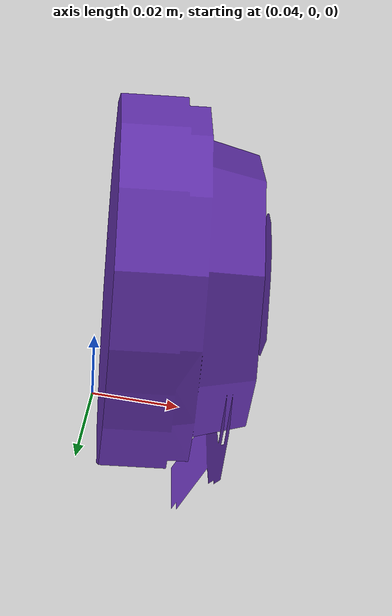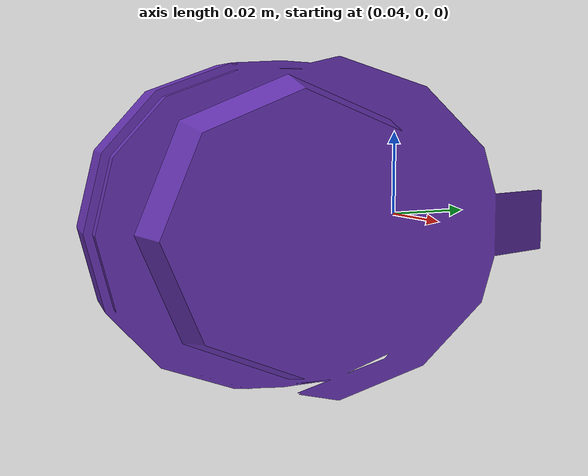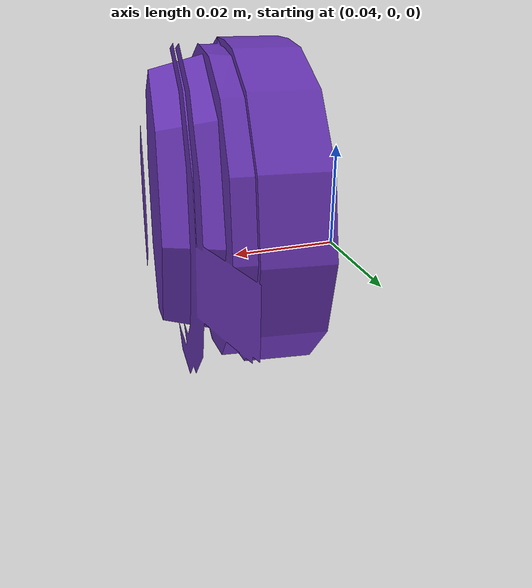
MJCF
<mujoco model="top_watertight_tiny">
  <default>
    <default group="2" type="mesh" contype="0" conaffinity="0">
      <geom group="2" type="mesh" contype="0" conaffinity="0"/>
    </default>
    <default group="3" type="mesh">
      <geom group="3" type="mesh"/>
    </default>
  </default>
  <asset>
    <mesh file="top_watertight_tiny.obj"/>
    <mesh file="top_watertight_tiny_collision_0.obj"/>
    <mesh file="top_watertight_tiny_collision_1.obj"/>
    <mesh file="top_watertight_tiny_collision_2.obj"/>
    <mesh file="top_watertight_tiny_collision_3.obj"/>
    <mesh file="top_watertight_tiny_collision_4.obj"/>
    <mesh file="top_watertight_tiny_collision_5.obj"/>
    <mesh file="top_watertight_tiny_collision_6.obj"/>
    <mesh file="top_watertight_tiny_collision_7.obj"/>
    <mesh file="top_watertight_tiny_collision_8.obj"/>
    <mesh file="top_watertight_tiny_collision_9.obj"/>
    <mesh file="top_watertight_tiny_collision_10.obj"/>
    <mesh file="top_watertight_tiny_collision_11.obj"/>
    <mesh file="top_watertight_tiny_collision_12.obj"/>
    <mesh file="top_watertight_tiny_collision_13.obj"/>
    <mesh file="top_watertight_tiny_collision_14.obj"/>
    <mesh file="top_watertight_tiny_collision_15.obj"/>
    <mesh file="top_watertight_tiny_collision_16.obj"/>
    <mesh file="top_watertight_tiny_collision_17.obj"/>
    <mesh file="top_watertight_tiny_collision_18.obj"/>
    <mesh file="top_watertight_tiny_collision_19.obj"/>
    <mesh file="top_watertight_tiny_collision_20.obj"/>
    <mesh file="top_watertight_tiny_collision_21.obj"/>
    <mesh file="top_watertight_tiny_collision_22.obj"/>
  </asset>
  <worldbody>
    <body name="top_watertight_tiny">
      <freejoint/>
      <geom mesh="top_watertight_tiny" group="2" type="mesh" rgba="0.4 0.2 0.7 1" contype="0" conaffinity="0"/>
      <geom mesh="top_watertight_tiny_collision_0" rgba="0.972191975508718 0.7063325295295756 0.017618356531841628 1" group="3" type="mesh"/>
      <geom mesh="top_watertight_tiny_collision_1" rgba="0.9105662967236675 0.23072450923037469 0.8241091775482193 1" group="3" type="mesh"/>
      <geom mesh="top_watertight_tiny_collision_2" rgba="0.06595602035843995 0.9905594900314446 0.052005618223440186 1" group="3" type="mesh"/>
      <geom mesh="top_watertight_tiny_collision_3" rgba="0.5875122225837994 0.38600920195669075 0.2567319312206978 1" group="3" type="mesh"/>
      <geom mesh="top_watertight_tiny_collision_4" rgba="0.8843967061785761 0.7651621590146752 0.4973384128017905 1" group="3" type="mesh"/>
      <geom mesh="top_watertight_tiny_collision_5" rgba="0.13868441616667926 0.6188789882046587 0.5358339721038192 1" group="3" type="mesh"/>
      <geom mesh="top_watertight_tiny_collision_6" rgba="0.9644292455005546 0.7867783163744734 0.5996516275383842 1" group="3" type="mesh"/>
      <geom mesh="top_watertight_tiny_collision_7" rgba="0.8955300513164135 0.6349430476894633 0.3906576238347147 1" group="3" type="mesh"/>
      <geom mesh="top_watertight_tiny_collision_8" rgba="0.00807233998893453 0.3689432071129899 0.026293767860044226 1" group="3" type="mesh"/>
      <geom mesh="top_watertight_tiny_collision_9" rgba="0.6533259123739588 0.01856904010015037 0.20779111779516024 1" group="3" type="mesh"/>
      <geom mesh="top_watertight_tiny_collision_10" rgba="0.5732629979582301 0.4990040027001653 0.910729971205775 1" group="3" type="mesh"/>
      <geom mesh="top_watertight_tiny_collision_11" rgba="0.25565611417188217 0.4974727984916151 0.033170826806754095 1" group="3" type="mesh"/>
      <geom mesh="top_watertight_tiny_collision_12" rgba="0.46114622165367924 0.3640672620533516 0.4337314557063341 1" group="3" type="mesh"/>
      <geom mesh="top_watertight_tiny_collision_13" rgba="0.5819924166070434 0.5929551825824984 0.7419561750883131 1" group="3" type="mesh"/>
      <geom mesh="top_watertight_tiny_collision_14" rgba="0.20069115523895797 0.7913871705082057 0.14132332947278659 1" group="3" type="mesh"/>
      <geom mesh="top_watertight_tiny_collision_15" rgba="0.544302303260373 0.1154283687669484 0.5645763346266488 1" group="3" type="mesh"/>
      <geom mesh="top_watertight_tiny_collision_16" rgba="0.5676102929579001 0.05288669129875101 0.8422864857368847 1" group="3" type="mesh"/>
      <geom mesh="top_watertight_tiny_collision_17" rgba="0.43154742718216477 0.17179999184107164 0.9593480597990771 1" group="3" type="mesh"/>
      <geom mesh="top_watertight_tiny_collision_18" rgba="0.04364970963152792 0.5433476429261603 0.951805943184898 1" group="3" type="mesh"/>
      <geom mesh="top_watertight_tiny_collision_19" rgba="0.16311107996771068 0.041671159854726136 0.8791564929876972 1" group="3" type="mesh"/>
      <geom mesh="top_watertight_tiny_collision_20" rgba="0.43526710194318563 0.01480659437398757 0.21180047687145376 1" group="3" type="mesh"/>
      <geom mesh="top_watertight_tiny_collision_21" rgba="0.7173398690918577 0.5931217638811728 0.20469906262751436 1" group="3" type="mesh"/>
      <geom mesh="top_watertight_tiny_collision_22" rgba="0.9932939068341023 0.778651105566973 0.3959232583777482 1" group="3" type="mesh"/>
    </body>
  </worldbody>
</mujoco>
